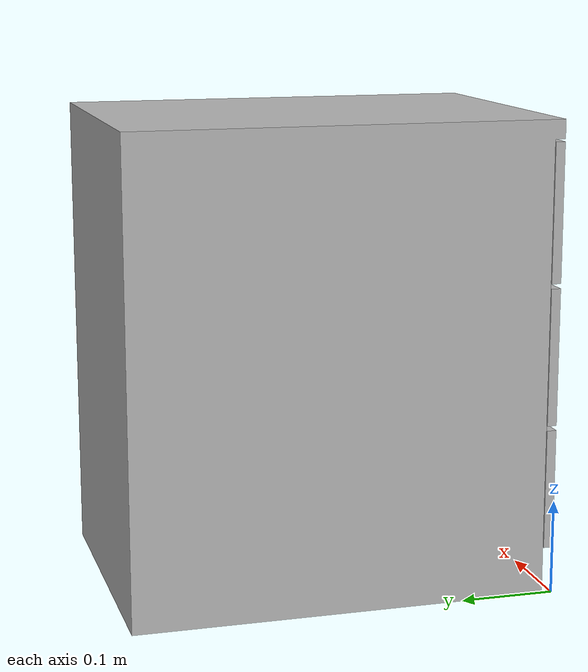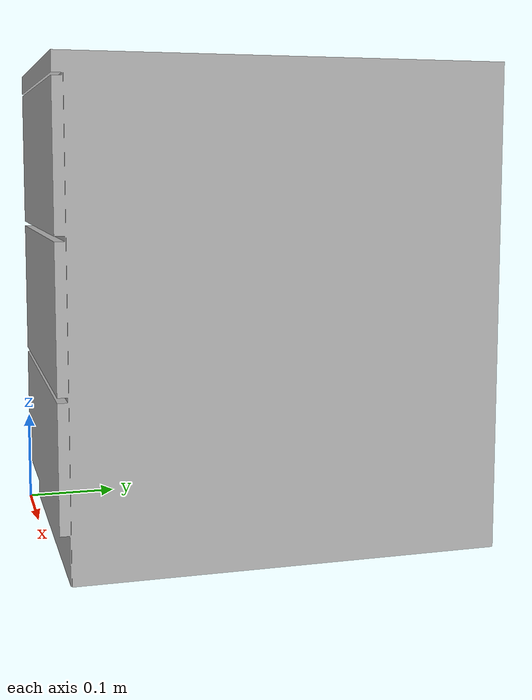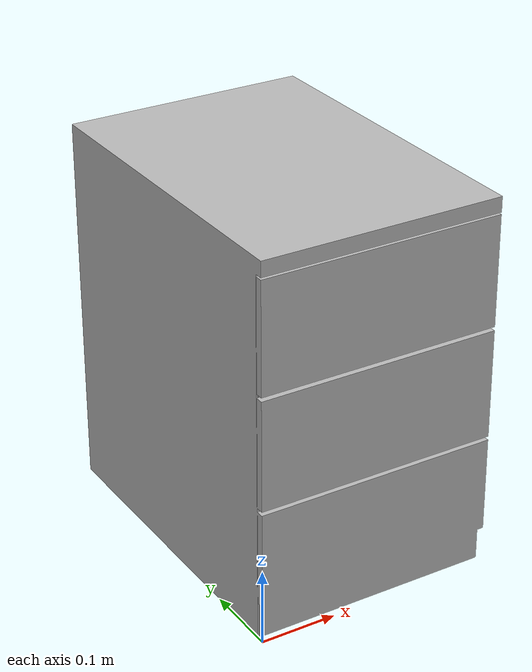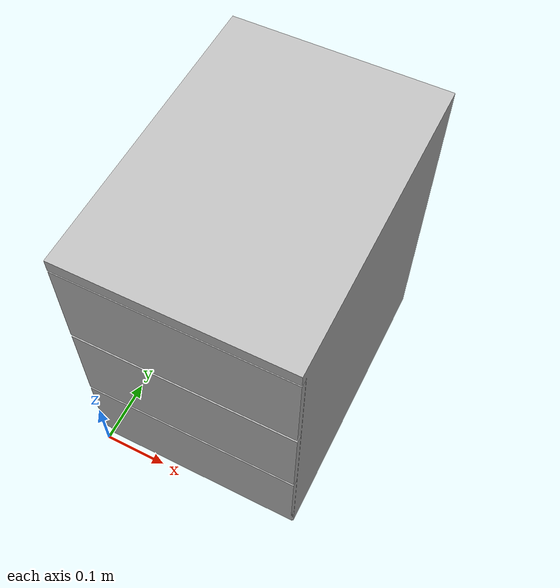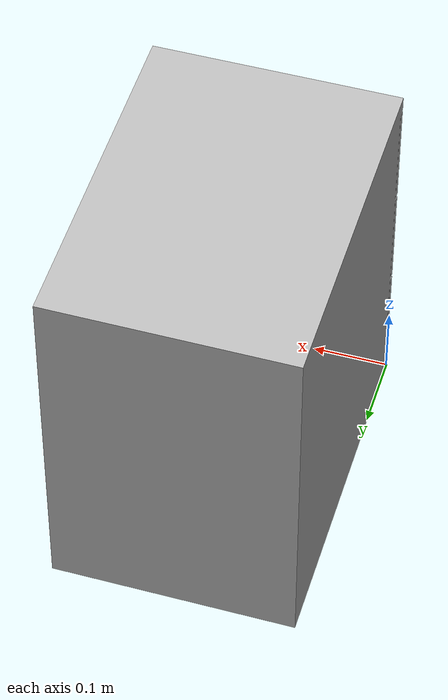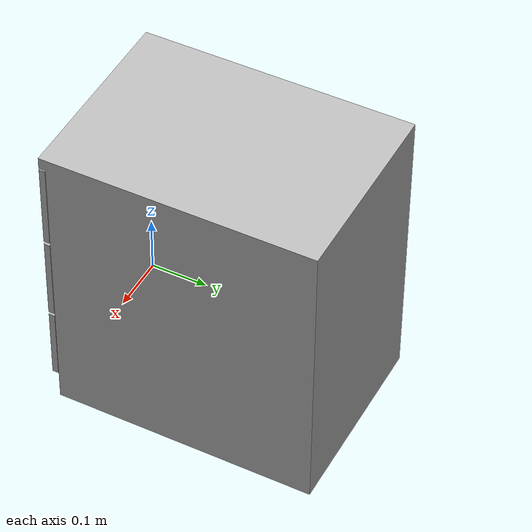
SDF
<?xml version="1.0"?>
<sdf version="1.4">
<model name="stolecek_pod_stul">
	<pose>0 0 0 0 0 0</pose>
	<static>true</static>
	<link name="stolecek_pod_stul_collision">
		<collision name="stolecek_pod_stul_collision">
		<geometry>
			<mesh>
				<uri>model://stolecek_pod_stul/meshes/model.dae</uri>

			</mesh>
		</geometry>
		</collision>
	<visual name="stolecek_pod_stul_mesh">
	<cast_shadows>false</cast_shadows>
		<geometry>
			<mesh>
				<uri> model://stolecek_pod_stul/meshes/model.dae</uri>

			</mesh>
		</geometry>
		<material>
		<script>
			<uri> model://stolecek_pod_stul/material/scripts</uri>
			<uri> model://stolecek_pod_stul/material/textures</uri>
			<name>stolecek_pod_stul/Diffuse</name>
		</script>
		</material>

	</visual>
</link>
</model>
</sdf>
